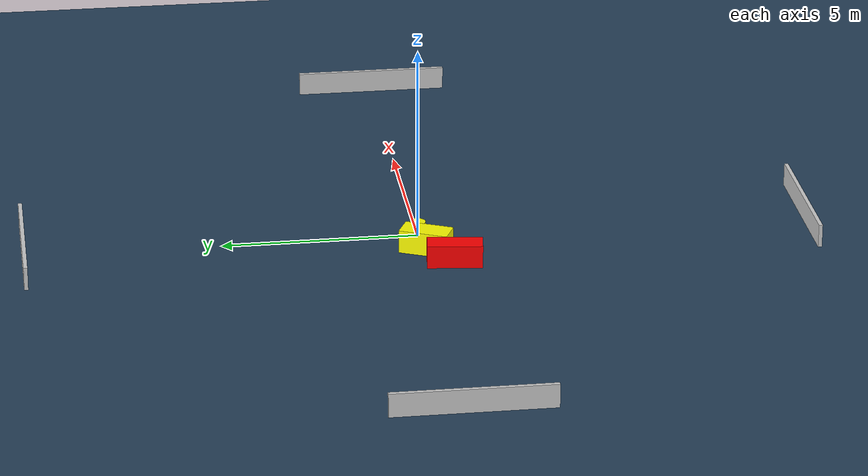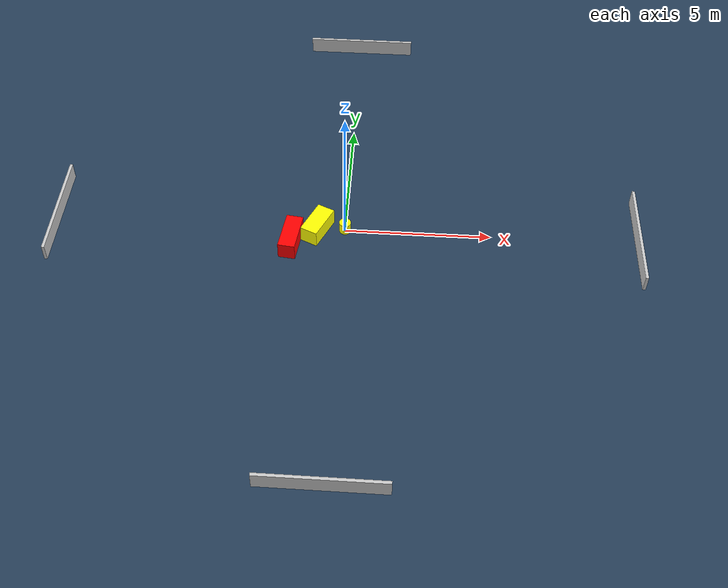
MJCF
<?xml version="1.0" ?>
<mujoco model="generated_environment">
  <option timestep="0.01" integrator="RK4" cone="elliptic"/>
  <default>
    <geom density="1"/>
  </default>
  <asset>
    <texture builtin="gradient" height="3072" name="skybox" rgb1="0.3 0.5 0.7" rgb2="0 0 0" type="skybox" width="512"/>
    <texture builtin="checker" height="300" name="groundplane" rgb1="0.2 0.3 0.4" rgb2="0.1 0.2 0.3" type="2d" width="300"/>
    <material name="groundplane" reflectance="0.2" texrepeat="5 5" texture="groundplane"/>
  </asset>
  <worldbody>
    <light dir="0 0 -1" directional="true" pos="0 0 1.5"/>
    <geom condim="3" friction="0.5 0.005 0.001" material="groundplane" name="floor" pos="0 0 0" size="0 0 0.05" type="plane"/>
    <body name="walls">
      <geom name="wall_1" condim="4" pos="-10.0 0.0 0.3" rgba="0.800000011920929 0.800000011920929 0.800000011920929 1.0" size="0.05 2.0 0.3" type="box"/>
      <geom name="wall_2" condim="4" pos="10.0 0.0 0.3" rgba="0.800000011920929 0.800000011920929 0.800000011920929 1.0" size="0.05 2.0 0.3" type="box"/>
      <geom name="wall_3" condim="4" pos="0.0 -10.0 0.3" rgba="0.800000011920929 0.800000011920929 0.800000011920929 1.0" size="2.0 0.05 0.3" type="box"/>
      <geom name="wall_4" condim="4" pos="0.0 10.0 0.3" rgba="0.800000011920929 0.800000011920929 0.800000011920929 1.0" size="2.0 0.05 0.3" type="box"/>
    </body>
    <body name="robot">
      <joint name="joint_x" type="slide" pos="0 0 0" axis="1 0 0"/>
      <joint name="joint_y" type="slide" pos="0 0 0" axis="0 1 0"/>
      <geom name="robot" type="cylinder" pos="0.0 0.0 0.2" size="0.2 0.2 0.0" mass="5.0" friction="1.0 0.005 0.0001" condim="4" rgba="1.0 1.0 0.0 1.0"/>
    </body>
    <body name="obstacle_1_movable">
      <geom name="obstacle_1_movable" condim="4" pos="-0.9464618911498952 -0.08962468589363591 0.3" euler="0 0 335.2861793347432" friction="0.0 0.005 0.001" rgba="1.0 1.0 0.0 1.0" size="0.30749402830761385 0.6289934268410531 0.3" type="box" mass="0.1"/>
      <joint type="free"/>
    </body>
    <body name="obstacle_2_static">
      <geom name="obstacle_2_static" condim="4" pos="-1.808677959061332 -0.69971975462717 0.3" euler="0 0 352.74707249054416" friction="0.0 0.005 0.001" rgba="1.0 0.0 0.0 1.0" size="0.2898769287378411 0.6999559058886113 0.3" type="box"/>
    </body>
  </worldbody>
  <actuator>
    <motor name="actuator_x" joint="joint_x" gear="1" ctrlrange="-1 1"/>
    <motor name="actuator_y" joint="joint_y" gear="1" ctrlrange="-1 1"/>
  </actuator>
</mujoco>
